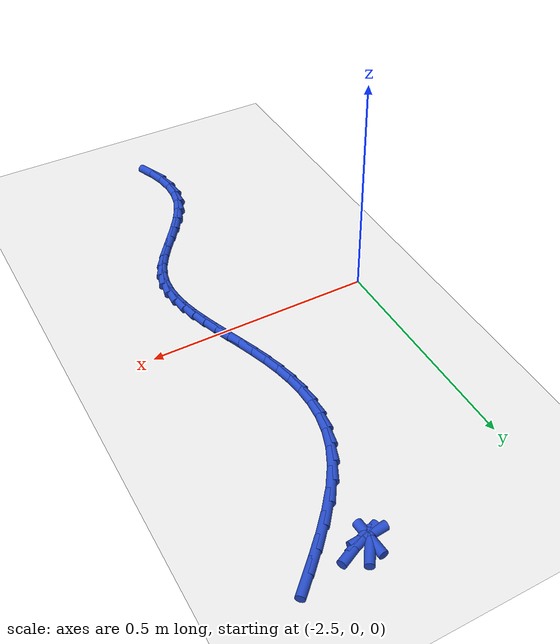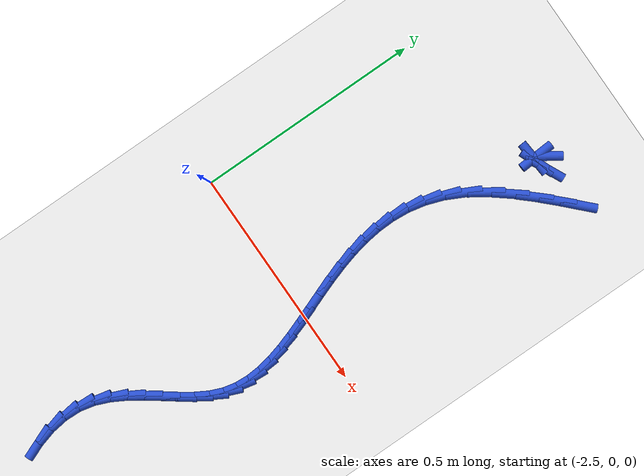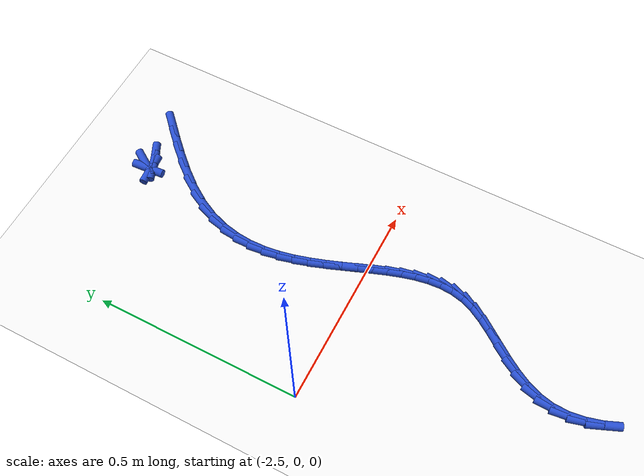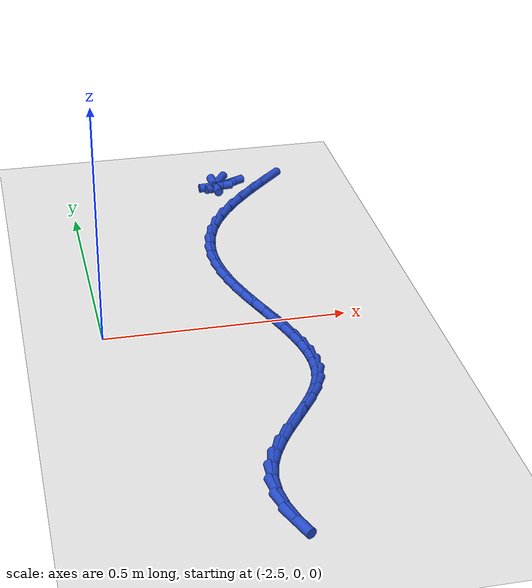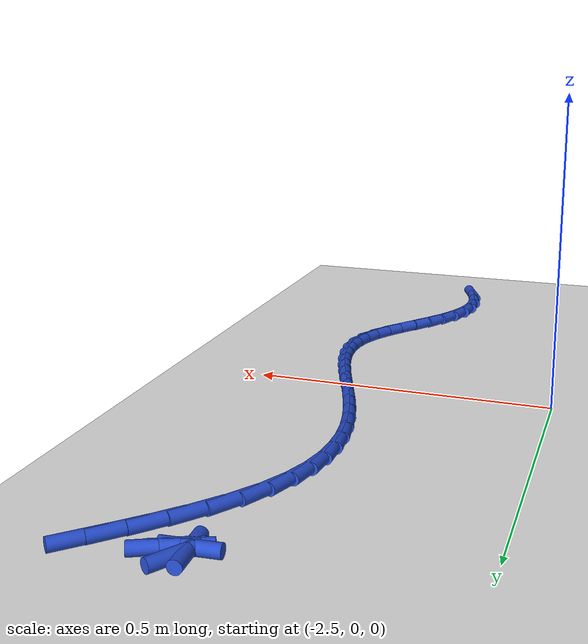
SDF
<sdf version="1.6">
 <world name="default">
  <model name="ground_plane">
   <static>1</static>
   <link name="link">
    <collision name="collision">
     <geometry><plane><normal>0 0 1</normal><size>100 100</size></plane></geometry>
     <surface><friction><ode><mu>100</mu><mu2>50</mu2></ode></friction></surface>
    </collision>
    <visual name="visual">
     <cast_shadows>0</cast_shadows>
     <geometry><plane><normal>0 0 1</normal><size>100 100</size></plane></geometry>
     <material>
      <script><uri>file://media/materials/scripts/gazebo.material</uri><name>Gazebo/WhiteGlow</name></script>
     </material>
    </visual>
   </link>
  </model>
  <model name="line">
   <link name="link_98">
    <pose>-2.144457233262506 0.6109377458812988 0.01 0 1.57 0.9908636120371687</pose>
    <collision name="collision">
     <geometry><cylinder><radius>0.01</radius><length>0.08</length></cylinder></geometry>
    </collision>
    <visual name="visual">
     <material>
      <script><name>Gazebo/Blue</name><uri>file://media/materials/scripts/gazebo.material</uri></script>
     </material>
     <geometry><cylinder><radius>0.01</radius><length>0.08</length></cylinder></geometry>
    </visual>
   </link>
   <link name="link_99">
    <pose>-2.153387218764354 0.5973056846650964 0.01 0 1.57 -1.5082491265928677</pose>
    <collision name="collision">
     <geometry><cylinder><radius>0.01</radius><length>0.08</length></cylinder></geometry>
    </collision>
    <visual name="visual">
     <material>
      <script><name>Gazebo/Blue</name><uri>file://media/materials/scripts/gazebo.material</uri></script>
     </material>
     <geometry><cylinder><radius>0.01</radius><length>0.08</length></cylinder></geometry>
    </visual>
   </link>
   <link name="link_100">
    <pose>-2.1529676756462335 0.5906068097593429 0.01 0 1.57 0.08220764440624673</pose>
    <collision name="collision">
     <geometry><cylinder><radius>0.01</radius><length>0.08</length></cylinder></geometry>
    </collision>
    <visual name="visual">
     <material>
      <script><name>Gazebo/Blue</name><uri>file://media/materials/scripts/gazebo.material</uri></script>
     </material>
     <geometry><cylinder><radius>0.01</radius><length>0.08</length></cylinder></geometry>
    </visual>
   </link>
   <link name="link_101">
    <pose>-2.141799050349153 0.5915270300501001 0.01 0 1.57 0.3752202910953797</pose>
    <collision name="collision">
     <geometry><cylinder><radius>0.01</radius><length>0.08</length></cylinder></geometry>
    </collision>
    <visual name="visual">
     <material>
      <script><name>Gazebo/Blue</name><uri>file://media/materials/scripts/gazebo.material</uri></script>
     </material>
     <geometry><cylinder><radius>0.01</radius><length>0.08</length></cylinder></geometry>
    </visual>
   </link>
   <link name="link_102">
    <pose>-2.1186578517103585 0.6006419090064952 0.01 0 1.57 0.446023096392137</pose>
    <collision name="collision">
     <geometry><cylinder><radius>0.01</radius><length>0.08</length></cylinder></geometry>
    </collision>
    <visual name="visual">
     <material>
      <script><name>Gazebo/Blue</name><uri>file://media/materials/scripts/gazebo.material</uri></script>
     </material>
     <geometry><cylinder><radius>0.01</radius><length>0.08</length></cylinder></geometry>
    </visual>
   </link>
   <link name="link_111">
    <pose>-2.0181664454920427 0.6121218694417302 0.01 0 1.57 0.771992712674088</pose>
    <collision name="collision">
     <geometry><cylinder><radius>0.01</radius><length>0.08</length></cylinder></geometry>
    </collision>
    <visual name="visual">
     <material>
      <script><name>Gazebo/Blue</name><uri>file://media/materials/scripts/gazebo.material</uri></script>
     </material>
     <geometry><cylinder><radius>0.01</radius><length>0.08</length></cylinder></geometry>
    </visual>
   </link>
   <link name="link_112">
    <pose>-2.0506199852301825 0.580526979210918 0.01 0 1.57 0.7956602707618387</pose>
    <collision name="collision">
     <geometry><cylinder><radius>0.01</radius><length>0.08</length></cylinder></geometry>
    </collision>
    <visual name="visual">
     <material>
      <script><name>Gazebo/Blue</name><uri>file://media/materials/scripts/gazebo.material</uri></script>
     </material>
     <geometry><cylinder><radius>0.01</radius><length>0.08</length></cylinder></geometry>
    </visual>
   </link>
   <link name="link_113">
    <pose>-2.085435619216101 0.5449893471100591 0.01 0 1.57 0.8357706373599532</pose>
    <collision name="collision">
     <geometry><cylinder><radius>0.01</radius><length>0.08</length></cylinder></geometry>
    </collision>
    <visual name="visual">
     <material>
      <script><name>Gazebo/Blue</name><uri>file://media/materials/scripts/gazebo.material</uri></script>
     </material>
     <geometry><cylinder><radius>0.01</radius><length>0.08</length></cylinder></geometry>
    </visual>
   </link>
   <link name="link_114">
    <pose>-2.119999094450685 0.506755801167629 0.01 0 1.57 0.8968094082175065</pose>
    <collision name="collision">
     <geometry><cylinder><radius>0.01</radius><length>0.08</length></cylinder></geometry>
    </collision>
    <visual name="visual">
     <material>
      <script><name>Gazebo/Blue</name><uri>file://media/materials/scripts/gazebo.material</uri></script>
     </material>
     <geometry><cylinder><radius>0.01</radius><length>0.08</length></cylinder></geometry>
    </visual>
   </link>
   <link name="link_115">
    <pose>-2.151696157934821 0.4670731694121031 0.01 0 1.57 0.9887843377597655</pose>
    <collision name="collision">
     <geometry><cylinder><radius>0.01</radius><length>0.08</length></cylinder></geometry>
    </collision>
    <visual name="visual">
     <material>
      <script><name>Gazebo/Blue</name><uri>file://media/materials/scripts/gazebo.material</uri></script>
     </material>
     <geometry><cylinder><radius>0.01</radius><length>0.08</length></cylinder></geometry>
    </visual>
   </link>
   <link name="link_116">
    <pose>-2.1779523535140695 0.4271730396819369 0.01 0 1.57 1.108790935771907</pose>
    <collision name="collision">
     <geometry><cylinder><radius>0.01</radius><length>0.08</length></cylinder></geometry>
    </collision>
    <visual name="visual">
     <material>
      <script><name>Gazebo/Blue</name><uri>file://media/materials/scripts/gazebo.material</uri></script>
     </material>
     <geometry><cylinder><radius>0.01</radius><length>0.08</length></cylinder></geometry>
    </visual>
   </link>
   <link name="link_117">
    <pose>-2.197580071598372 0.3877559073297062 0.01 0 1.57 1.2360905210885276</pose>
    <collision name="collision">
     <geometry><cylinder><radius>0.01</radius><length>0.08</length></cylinder></geometry>
    </collision>
    <visual name="visual">
     <material>
      <script><name>Gazebo/Blue</name><uri>file://media/materials/scripts/gazebo.material</uri></script>
     </material>
     <geometry><cylinder><radius>0.01</radius><length>0.08</length></cylinder></geometry>
    </visual>
   </link>
   <link name="link_118">
    <pose>-2.211105677305088 0.3488659015954834 0.01 0 1.57 1.3637909322514807</pose>
    <collision name="collision">
     <geometry><cylinder><radius>0.01</radius><length>0.08</length></cylinder></geometry>
    </collision>
    <visual name="visual">
     <material>
      <script><name>Gazebo/Blue</name><uri>file://media/materials/scripts/gazebo.material</uri></script>
     </material>
     <geometry><cylinder><radius>0.01</radius><length>0.08</length></cylinder></geometry>
    </visual>
   </link>
   <link name="link_119">
    <pose>-2.219161679486924 0.3105065040069609 0.01 0 1.57 1.4859015579453456</pose>
    <collision name="collision">
     <geometry><cylinder><radius>0.01</radius><length>0.08</length></cylinder></geometry>
    </collision>
    <visual name="visual">
     <material>
      <script><name>Gazebo/Blue</name><uri>file://media/materials/scripts/gazebo.material</uri></script>
     </material>
     <geometry><cylinder><radius>0.01</radius><length>0.08</length></cylinder></geometry>
    </visual>
   </link>
   <link name="link_120">
    <pose>-2.2223805869965867 0.27268119609183133 0.01 0 1.57 -1.5443680985564807</pose>
    <collision name="collision">
     <geometry><cylinder><radius>0.01</radius><length>0.08</length></cylinder></geometry>
    </collision>
    <visual name="visual">
     <material>
      <script><name>Gazebo/Blue</name><uri>file://media/materials/scripts/gazebo.material</uri></script>
     </material>
     <geometry><cylinder><radius>0.01</radius><length>0.08</length></cylinder></geometry>
    </visual>
   </link>
   <link name="link_121">
    <pose>-2.2213949086867792 0.23539345937778564 0.01 0 1.57 -1.447394805990771</pose>
    <collision name="collision">
     <geometry><cylinder><radius>0.01</radius><length>0.08</length></cylinder></geometry>
    </collision>
    <visual name="visual">
     <material>
      <script><name>Gazebo/Blue</name><uri>file://media/materials/scripts/gazebo.material</uri></script>
     </material>
     <geometry><cylinder><radius>0.01</radius><length>0.08</length></cylinder></geometry>
    </visual>
   </link>
   <link name="link_122">
    <pose>-2.2168371534102094 0.19864677539251685 0.01 0 1.57 -1.3665870144497916</pose>
    <collision name="collision">
     <geometry><cylinder><radius>0.01</radius><length>0.08</length></cylinder></geometry>
    </collision>
    <visual name="visual">
     <material>
      <script><name>Gazebo/Blue</name><uri>file://media/materials/scripts/gazebo.material</uri></script>
     </material>
     <geometry><cylinder><radius>0.01</radius><length>0.08</length></cylinder></geometry>
    </visual>
   </link>
   <link name="link_123">
    <pose>-2.2093398300195815 0.16244462566371676 0.01 0 1.57 -1.302443262651336</pose>
    <collision name="collision">
     <geometry><cylinder><radius>0.01</radius><length>0.08</length></cylinder></geometry>
    </collision>
    <visual name="visual">
     <material>
      <script><name>Gazebo/Blue</name><uri>file://media/materials/scripts/gazebo.material</uri></script>
     </material>
     <geometry><cylinder><radius>0.01</radius><length>0.08</length></cylinder></geometry>
    </visual>
   </link>
   <link name="link_124">
    <pose>-2.1995354473676008 0.12679049171907772 0.01 0 1.57 -1.2547470159617584</pose>
    <collision name="collision">
     <geometry><cylinder><radius>0.01</radius><length>0.08</length></cylinder></geometry>
    </collision>
    <visual name="visual">
     <material>
      <script><name>Gazebo/Blue</name><uri>file://media/materials/scripts/gazebo.material</uri></script>
     </material>
     <geometry><cylinder><radius>0.01</radius><length>0.08</length></cylinder></geometry>
    </visual>
   </link>
   <link name="link_125">
    <pose>-2.1880565143069735 0.09168785508629192 0.01 0 1.57 -1.2230946129520144</pose>
    <collision name="collision">
     <geometry><cylinder><radius>0.01</radius><length>0.08</length></cylinder></geometry>
    </collision>
    <visual name="visual">
     <material>
      <script><name>Gazebo/Blue</name><uri>file://media/materials/scripts/gazebo.material</uri></script>
     </material>
     <geometry><cylinder><radius>0.01</radius><length>0.08</length></cylinder></geometry>
    </visual>
   </link>
   <link name="link_126">
    <pose>-2.175535539690405 0.057140197293051406 0.01 0 1.57 -1.20727370632932</pose>
    <collision name="collision">
     <geometry><cylinder><radius>0.01</radius><length>0.08</length></cylinder></geometry>
    </collision>
    <visual name="visual">
     <material>
      <script><name>Gazebo/Blue</name><uri>file://media/materials/scripts/gazebo.material</uri></script>
     </material>
     <geometry><cylinder><radius>0.01</radius><length>0.08</length></cylinder></geometry>
    </visual>
   </link>
   <link name="link_127">
    <pose>-2.1626050323706005 0.02315099986704846 0.01 0 1.57 -1.2075140687145731</pose>
    <collision name="collision">
     <geometry><cylinder><radius>0.01</radius><length>0.08</length></cylinder></geometry>
    </collision>
    <visual name="visual">
     <material>
      <script><name>Gazebo/Blue</name><uri>file://media/materials/scripts/gazebo.material</uri></script>
     </material>
     <geometry><cylinder><radius>0.01</radius><length>0.08</length></cylinder></geometry>
    </visual>
   </link>
   <link name="link_128">
    <pose>-2.1498975012002663 -0.01027625566402482 0.01 0 1.57 -1.224653957996939</pose>
    <collision name="collision">
     <geometry><cylinder><radius>0.01</radius><length>0.08</length></cylinder></geometry>
    </collision>
    <visual name="visual">
     <material>
      <script><name>Gazebo/Blue</name><uri>file://media/materials/scripts/gazebo.material</uri></script>
     </material>
     <geometry><cylinder><radius>0.01</radius><length>0.08</length></cylinder></geometry>
    </visual>
   </link>
   <link name="link_129">
    <pose>-2.138045455032107 -0.04313808777247625 0.01 0 1.57 -1.2602420453861893</pose>
    <collision name="collision">
     <geometry><cylinder><radius>0.01</radius><length>0.08</length></cylinder></geometry>
    </collision>
    <visual name="visual">
     <material>
      <script><name>Gazebo/Blue</name><uri>file://media/materials/scripts/gazebo.material</uri></script>
     </material>
     <geometry><cylinder><radius>0.01</radius><length>0.08</length></cylinder></geometry>
    </visual>
   </link>
   <link name="link_130">
    <pose>-2.1276814027188284 -0.0754310149306137 0.01 0 1.57 -1.3165402156311603</pose>
    <collision name="collision">
     <geometry><cylinder><radius>0.01</radius><length>0.08</length></cylinder></geometry>
    </collision>
    <visual name="visual">
     <material>
      <script><name>Gazebo/Blue</name><uri>file://media/materials/scripts/gazebo.material</uri></script>
     </material>
     <geometry><cylinder><radius>0.01</radius><length>0.08</length></cylinder></geometry>
    </visual>
   </link>
   <link name="link_131">
    <pose>-2.119437853113137 -0.107151555610745 0.01 0 1.57 -1.3962979066010357</pose>
    <collision name="collision">
     <geometry><cylinder><radius>0.01</radius><length>0.08</length></cylinder></geometry>
    </collision>
    <visual name="visual">
     <material>
      <script><name>Gazebo/Blue</name><uri>file://media/materials/scripts/gazebo.material</uri></script>
     </material>
     <geometry><cylinder><radius>0.01</radius><length>0.08</length></cylinder></geometry>
    </visual>
   </link>
   <link name="link_132">
    <pose>-2.1139473150677364 -0.13829622828517793 0.01 0 1.57 -1.5020354298146927</pose>
    <collision name="collision">
     <geometry><cylinder><radius>0.01</radius><length>0.08</length></cylinder></geometry>
    </collision>
    <visual name="visual">
     <material>
      <script><name>Gazebo/Blue</name><uri>file://media/materials/scripts/gazebo.material</uri></script>
     </material>
     <geometry><cylinder><radius>0.01</radius><length>0.08</length></cylinder></geometry>
    </visual>
   </link>
   <link name="link_133">
    <pose>-2.111842297435334 -0.16886155142622036 0.01 0 1.57 1.507078407621698</pose>
    <collision name="collision">
     <geometry><cylinder><radius>0.01</radius><length>0.08</length></cylinder></geometry>
    </collision>
    <visual name="visual">
     <material>
      <script><name>Gazebo/Blue</name><uri>file://media/materials/scripts/gazebo.material</uri></script>
     </material>
     <geometry><cylinder><radius>0.01</radius><length>0.08</length></cylinder></geometry>
    </visual>
   </link>
   <link name="link_134">
    <pose>-2.113755309068634 -0.19884404350618018 0.01 0 1.57 1.351120553325173</pose>
    <collision name="collision">
     <geometry><cylinder><radius>0.01</radius><length>0.08</length></cylinder></geometry>
    </collision>
    <visual name="visual">
     <material>
      <script><name>Gazebo/Blue</name><uri>file://media/materials/scripts/gazebo.material</uri></script>
     </material>
     <geometry><cylinder><radius>0.01</radius><length>0.08</length></cylinder></geometry>
    </visual>
   </link>
   <link name="link_135">
    <pose>-2.1203188588203425 -0.22824022299736516 0.01 0 1.57 1.183357670834119</pose>
    <collision name="collision">
     <geometry><cylinder><radius>0.01</radius><length>0.08</length></cylinder></geometry>
    </collision>
    <visual name="visual">
     <material>
      <script><name>Gazebo/Blue</name><uri>file://media/materials/scripts/gazebo.material</uri></script>
     </material>
     <geometry><cylinder><radius>0.01</radius><length>0.08</length></cylinder></geometry>
    </visual>
   </link>
   <link name="link_136">
    <pose>-2.1320789646612623 -0.25705949587043936 0.01 0 1.57 1.0489396174219494</pose>
    <collision name="collision">
     <geometry><cylinder><radius>0.01</radius><length>0.08</length></cylinder></geometry>
    </collision>
    <visual name="visual">
     <material>
      <script><name>Gazebo/Blue</name><uri>file://media/materials/scripts/gazebo.material</uri></script>
     </material>
     <geometry><cylinder><radius>0.01</radius><length>0.08</length></cylinder></geometry>
    </visual>
   </link>
   <link name="link_137">
    <pose>-2.1484237844475293 -0.28548379403170787 0.01 0 1.57 0.9682354360501874</pose>
    <collision name="collision">
     <geometry><cylinder><radius>0.01</radius><length>0.08</length></cylinder></geometry>
    </collision>
    <visual name="visual">
     <material>
      <script><name>Gazebo/Blue</name><uri>file://media/materials/scripts/gazebo.material</uri></script>
     </material>
     <geometry><cylinder><radius>0.01</radius><length>0.08</length></cylinder></geometry>
    </visual>
   </link>
   <link name="link_138">
    <pose>-2.1679150936843237 -0.3138181837682954 0.01 0 1.57 0.9325248778365971</pose>
    <collision name="collision">
     <geometry><cylinder><radius>0.01</radius><length>0.08</length></cylinder></geometry>
    </collision>
    <visual name="visual">
     <material>
      <script><name>Gazebo/Blue</name><uri>file://media/materials/scripts/gazebo.material</uri></script>
     </material>
     <geometry><cylinder><radius>0.01</radius><length>0.08</length></cylinder></geometry>
    </visual>
   </link>
   <link name="link_139">
    <pose>-2.1890968456281406 -0.34237038695593447 0.01 0 1.57 0.9359825777933276</pose>
    <collision name="collision">
     <geometry><cylinder><radius>0.01</radius><length>0.08</length></cylinder></geometry>
    </collision>
    <visual name="visual">
     <material>
      <script><name>Gazebo/Blue</name><uri>file://media/materials/scripts/gazebo.material</uri></script>
     </material>
     <geometry><cylinder><radius>0.01</radius><length>0.08</length></cylinder></geometry>
    </visual>
   </link>
   <link name="link_140">
    <pose>-2.2105129935354704 -0.3714481254703576 0.01 0 1.57 0.9769415893746222</pose>
    <collision name="collision">
     <geometry><cylinder><radius>0.01</radius><length>0.08</length></cylinder></geometry>
    </collision>
    <visual name="visual">
     <material>
      <script><name>Gazebo/Blue</name><uri>file://media/materials/scripts/gazebo.material</uri></script>
     </material>
     <geometry><cylinder><radius>0.01</radius><length>0.08</length></cylinder></geometry>
    </visual>
   </link>
   <link name="link_141">
    <pose>-2.230707490662809 -0.4013591211872974 0.01 0 1.57 1.0571829686014853</pose>
    <collision name="collision">
     <geometry><cylinder><radius>0.01</radius><length>0.08</length></cylinder></geometry>
    </collision>
    <visual name="visual">
     <material>
      <script><name>Gazebo/Blue</name><uri>file://media/materials/scripts/gazebo.material</uri></script>
     </material>
     <geometry><cylinder><radius>0.01</radius><length>0.08</length></cylinder></geometry>
    </visual>
   </link>
   <link name="link_142">
    <pose>-2.2482242902666494 -0.43241109598248634 0.01 0 1.57 1.1801781246918805</pose>
    <collision name="collision">
     <geometry><cylinder><radius>0.01</radius><length>0.08</length></cylinder></geometry>
    </collision>
    <visual name="visual">
     <material>
      <script><name>Gazebo/Blue</name><uri>file://media/materials/scripts/gazebo.material</uri></script>
     </material>
     <geometry><cylinder><radius>0.01</radius><length>0.08</length></cylinder></geometry>
    </visual>
   </link>
   <link name="link_143">
    <pose>-2.2616073456034855 -0.46491177173165676 0.01 0 1.57 1.3470001801996705</pose>
    <collision name="collision">
     <geometry><cylinder><radius>0.01</radius><length>0.08</length></cylinder></geometry>
    </collision>
    <visual name="visual">
     <material>
      <script><name>Gazebo/Blue</name><uri>file://media/materials/scripts/gazebo.material</uri></script>
     </material>
     <geometry><cylinder><radius>0.01</radius><length>0.08</length></cylinder></geometry>
    </visual>
   </link>
   <link name="link_144">
    <pose>-2.2694041781041348 -0.4991671801861093 0.01 0 1.57 1.5335695950915302</pose>
    <collision name="collision">
     <geometry><cylinder><radius>0.01</radius><length>0.08</length></cylinder></geometry>
    </collision>
    <visual name="visual">
     <material>
      <script><name>Gazebo/Blue</name><uri>file://media/materials/scripts/gazebo.material</uri></script>
     </material>
     <geometry><cylinder><radius>0.01</radius><length>0.08</length></cylinder></geometry>
    </visual>
   </link>
   <link name="link_145">
    <pose>-2.2707464307842 -0.5352066743051633 0.01 0 1.57 -1.443948632320453</pose>
    <collision name="collision">
     <geometry><cylinder><radius>0.01</radius><length>0.08</length></cylinder></geometry>
    </collision>
    <visual name="visual">
     <material>
      <script><name>Gazebo/Blue</name><uri>file://media/materials/scripts/gazebo.material</uri></script>
     </material>
     <geometry><cylinder><radius>0.01</radius><length>0.08</length></cylinder></geometry>
    </visual>
   </link>
   <link name="link_146">
    <pose>-2.2659930952858804 -0.5724782531927218 0.01 0 1.57 -1.304431684534762</pose>
    <collision name="collision">
     <geometry><cylinder><radius>0.01</radius><length>0.08</length></cylinder></geometry>
    </collision>
    <visual name="visual">
     <material>
      <script><name>Gazebo/Blue</name><uri>file://media/materials/scripts/gazebo.material</uri></script>
     </material>
     <geometry><cylinder><radius>0.01</radius><length>0.08</length></cylinder></geometry>
    </visual>
   </link>
   <link name="link_147">
    <pose>-2.2556580708471716 -0.6103565414231554 0.01 0 1.57 -1.1844072169337685</pose>
    <collision name="collision">
     <geometry><cylinder><radius>0.01</radius><length>0.08</length></cylinder></geometry>
    </collision>
    <visual name="visual">
     <material>
      <script><name>Gazebo/Blue</name><uri>file://media/materials/scripts/gazebo.material</uri></script>
     </material>
     <geometry><cylinder><radius>0.01</radius><length>0.08</length></cylinder></geometry>
    </visual>
   </link>
  </model>
 </world>
</sdf>
